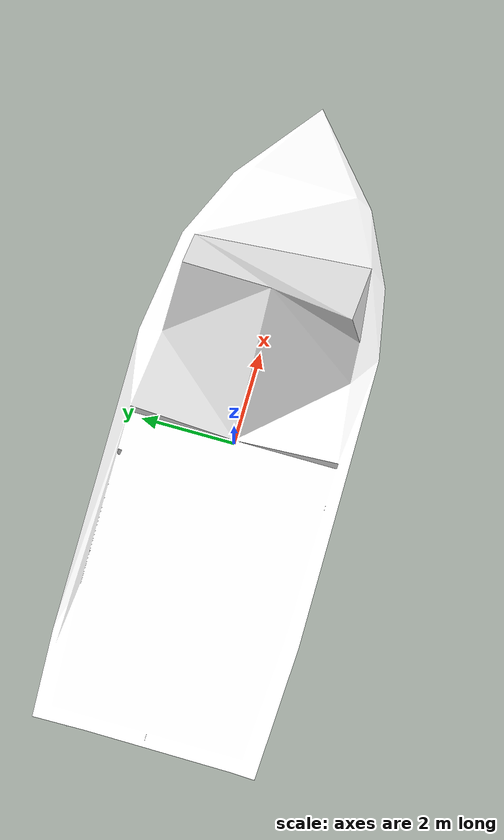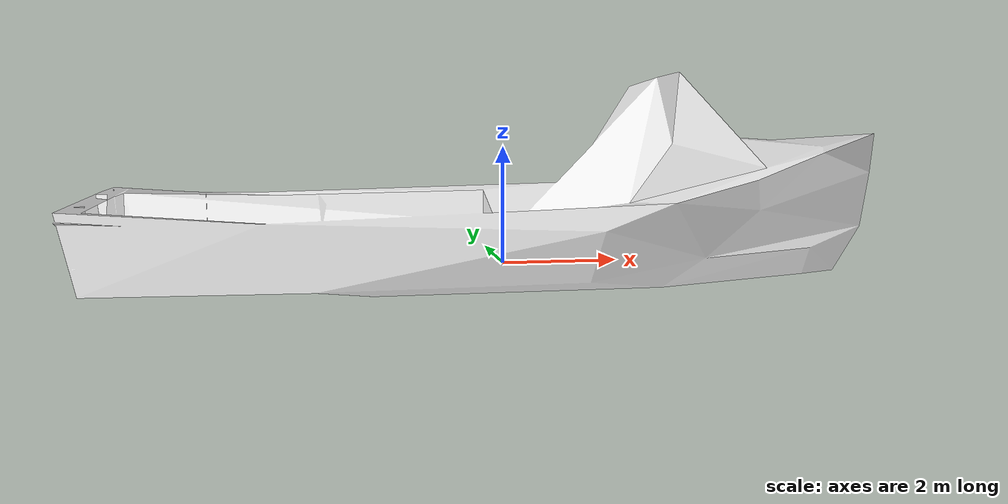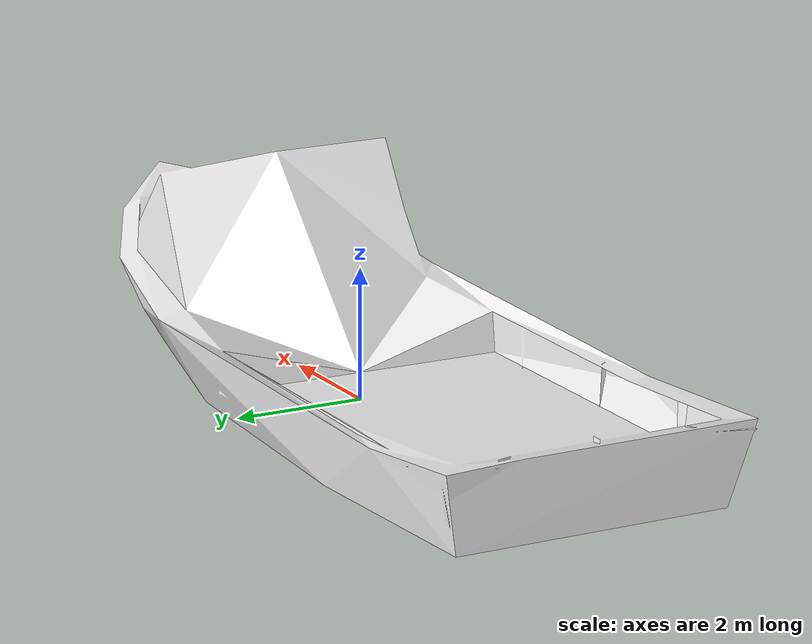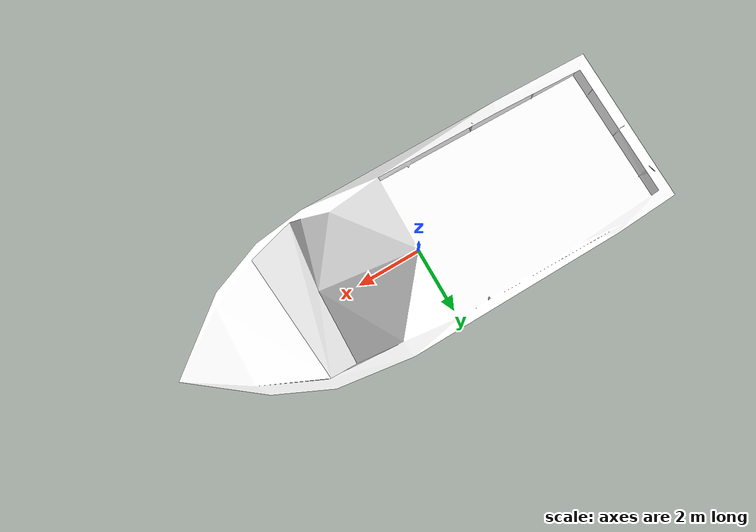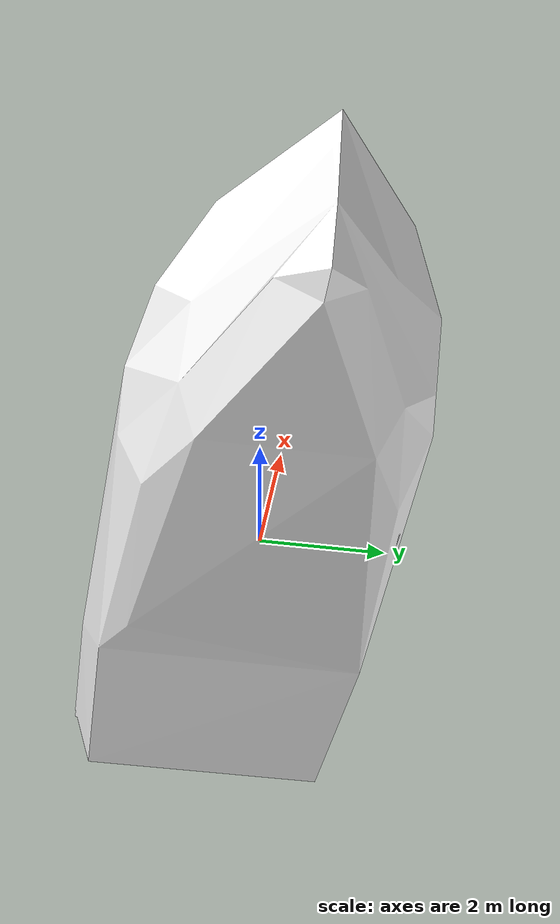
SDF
<?xml version='1.0' ?>
<sdf version="1.6">
  <model name="vessel_a_mod">
    <static>false</static>
    <link name="link">
      <enable_wind>true</enable_wind>
      <inertial>
        <mass>1500.0</mass>
        <inertia>
          <ixx>3625</ixx>
          <ixy>0.0</ixy>
          <ixz>0.0</ixz>
          <iyy>25000</iyy>
          <iyz>0.0</iyz>
          <izz>27625</izz>
        </inertia>
      </inertial>
      <visual name="visual">
        <pose>0 0 0 0 0 -1.5708</pose>
        <geometry>
          <mesh>
            <uri>meshes/Boat05.dae</uri>
          </mesh>
        </geometry>
        <material>
          <diffuse>1.0 1.0 1.0</diffuse>
          <specular>1.0 1.0 1.0</specular>
          <pbr>
            <metal>
              <albedo_map>materials/textures/Boat05_Albedo.jpg</albedo_map>
              <normal_map>materials/textures/Boat05_Normal.png</normal_map>
              <roughness_map>materials/textures/Boat05_Roughness.jpg</roughness_map>
              <metalness_map>materials/textures/Boat05_Metalness.png</metalness_map>
            </metal>
          </pbr>
        </material>
      </visual>
      <collision name="collision">
        <pose>0 0 0 0 0 -1.5708</pose>
        <geometry>
          <mesh>
          <scale>1 1 1</scale>
            <uri>model://vessel_a_mod/meshes/vessel_collision.dae</uri>
          </mesh>
        </geometry>
      </collision>
    </link>

          <!-- Hydrodynamics plugin -->
        <plugin
          filename="gz-waves1-hydrodynamics-system"
          name="gz::sim::systems::Hydrodynamics">

          <enable>vessel_a_mod::link::collision</enable>

          <hydrodynamics>
          <damping_on>1</damping_on>
          <viscous_drag_on>1</viscous_drag_on>
          <pressure_drag_on>1</pressure_drag_on>

          <!-- Linear and Angular Damping -->
          <cDampL1>1.0E-6</cDampL1>
          <cDampL2>1.0E-6</cDampL2>
          <cDampR1>1.0E-6</cDampR1>
          <cDampR2>1.0E-6</cDampR2>

          <!-- 'Pressure' Drag -->
          <cPDrag1>1.0E+2</cPDrag1>
          <cPDrag2>1.0E+2</cPDrag2>
          <fPDrag>0.4</fPDrag>
          <cSDrag1>1.0E+2</cSDrag1>
          <cSDrag2>1.0E+2</cSDrag2>
          <fSDrag>0.4</fSDrag>
          <vRDrag>1.0</vRDrag>
          </hydrodynamics>
          <markers>
            <update_rate>10</update_rate>
            <water_patch>0</water_patch>
            <waterline>0</waterline>
            <underwater_surface>0</underwater_surface>
          </markers>
        </plugin>
 </model>
</sdf>
